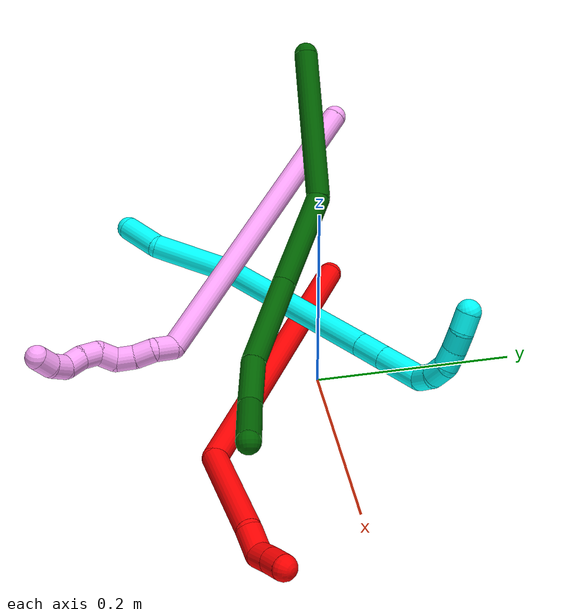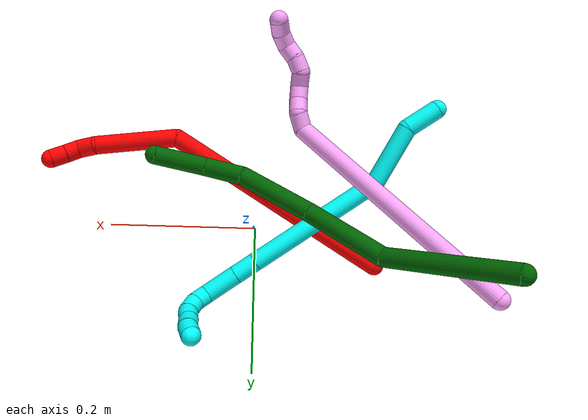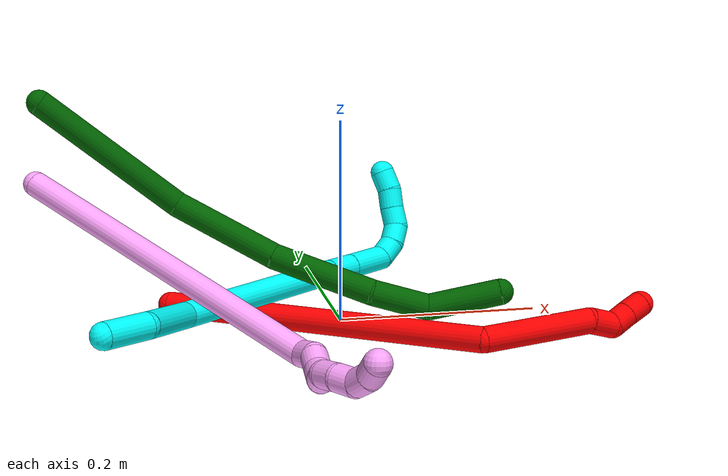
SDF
<sdf version="1.7">
 <world name="default">
  <model name="2">
   <static>0</static>
   <link name="2">
    <collision name="collision-cylinder-e_1_1_4">
     <pose>0.128787 -0.078785 0.057385 0.941279 0.922944 0.495607</pose>
     <geometry><cylinder><radius>0.0125</radius><length>0.323025</length></cylinder></geometry>
     <surface>
      <friction><ode><mu>1.16</mu><mu2>1.16</mu2><slip1>0</slip1><slip2>0</slip2></ode></friction>
      <contact><ode><kp>1e+06</kp><kd>1</kd><max_vel>0</max_vel><min_depth>0.001</min_depth></ode></contact>
     </surface>
    </collision>
    <visual name="visual-cylinder-e_1_1_4">
     <pose>0.128787 -0.078785 0.057385 0.941279 0.922944 0.495607</pose>
     <geometry><cylinder><radius>0.0125</radius><length>0.323025</length></cylinder></geometry>
     <material><ambient>1 0 0 1</ambient></material>
    </visual>
    <collision name="collision-cylinder-e_2_4_5">
     <pose>0.283315 -0.168411 0.162152 0.224916 0.48704 0.056102</pose>
     <geometry><cylinder><radius>0.0125</radius><length>0.110002</length></cylinder></geometry>
     <surface>
      <friction><ode><mu>1.16</mu><mu2>1.16</mu2><slip1>0</slip1><slip2>0</slip2></ode></friction>
      <contact><ode><kp>1e+06</kp><kd>1</kd><max_vel>0</max_vel><min_depth>0.001</min_depth></ode></contact>
     </surface>
    </collision>
    <visual name="visual-cylinder-e_2_4_5">
     <pose>0.283315 -0.168411 0.162152 0.224916 0.48704 0.056102</pose>
     <geometry><cylinder><radius>0.0125</radius><length>0.110002</length></cylinder></geometry>
     <material><ambient>1 0 0 1</ambient></material>
    </visual>
    <collision name="collision-cylinder-e_3_5_6">
     <pose>0.317211 -0.1776 0.219668 -0.161452 0.671165 -0.056418</pose>
     <geometry><cylinder><radius>0.0125</radius><length>0.026225</length></cylinder></geometry>
     <surface>
      <friction><ode><mu>1.16</mu><mu2>1.16</mu2><slip1>0</slip1><slip2>0</slip2></ode></friction>
      <contact><ode><kp>1e+06</kp><kd>1</kd><max_vel>0</max_vel><min_depth>0.001</min_depth></ode></contact>
     </surface>
    </collision>
    <visual name="visual-cylinder-e_3_5_6">
     <pose>0.317211 -0.1776 0.219668 -0.161452 0.671165 -0.056418</pose>
     <geometry><cylinder><radius>0.0125</radius><length>0.026225</length></cylinder></geometry>
     <material><ambient>1 0 0 1</ambient></material>
    </visual>
    <collision name="collision-cylinder-e_4_6_7">
     <pose>0.325793 -0.178284 0.23966 0.232557 0.042102 0.004919</pose>
     <geometry><cylinder><radius>0.0125</radius><length>0.020278</length></cylinder></geometry>
     <surface>
      <friction><ode><mu>1.16</mu><mu2>1.16</mu2><slip1>0</slip1><slip2>0</slip2></ode></friction>
      <contact><ode><kp>1e+06</kp><kd>1</kd><max_vel>0</max_vel><min_depth>0.001</min_depth></ode></contact>
     </surface>
    </collision>
    <visual name="visual-cylinder-e_4_6_7">
     <pose>0.325793 -0.178284 0.23966 0.232557 0.042102 0.004919</pose>
     <geometry><cylinder><radius>0.0125</radius><length>0.020278</length></cylinder></geometry>
     <material><ambient>1 0 0 1</ambient></material>
    </visual>
    <collision name="collision-cylinder-e_5_7_2">
     <pose>0.327087 -0.183003 0.259433 0.235951 0.084861 0.010064</pose>
     <geometry><cylinder><radius>0.0125</radius><length>0.02047</length></cylinder></geometry>
     <surface>
      <friction><ode><mu>1.16</mu><mu2>1.16</mu2><slip1>0</slip1><slip2>0</slip2></ode></friction>
      <contact><ode><kp>1e+06</kp><kd>1</kd><max_vel>0</max_vel><min_depth>0.001</min_depth></ode></contact>
     </surface>
    </collision>
    <visual name="visual-cylinder-e_5_7_2">
     <pose>0.327087 -0.183003 0.259433 0.235951 0.084861 0.010064</pose>
     <geometry><cylinder><radius>0.0125</radius><length>0.02047</length></cylinder></geometry>
     <material><ambient>1 0 0 1</ambient></material>
    </visual>
    <collision name="collision-sphere-2">
     <pose>0.327954 -0.185387 0.269349 0 -0 0</pose>
     <geometry><sphere><radius>0.0125</radius></sphere></geometry>
     <surface>
      <friction><ode><mu>1.16</mu><mu2>1.16</mu2><slip1>0</slip1><slip2>0</slip2></ode></friction>
      <contact><ode><kp>1e+06</kp><kd>1</kd><max_vel>0</max_vel><min_depth>0.001</min_depth></ode></contact>
     </surface>
    </collision>
    <visual name="visual-sphere-2">
     <pose>0.327954 -0.185387 0.269349 0 -0 0</pose>
     <geometry><sphere><radius>0.0125</radius></sphere></geometry>
     <material><ambient>1 0 0 1</ambient></material>
    </visual>
    <collision name="collision-sphere-7">
     <pose>0.326219 -0.180619 0.249518 0 -0 0</pose>
     <geometry><sphere><radius>0.0125</radius></sphere></geometry>
     <surface>
      <friction><ode><mu>1.16</mu><mu2>1.16</mu2><slip1>0</slip1><slip2>0</slip2></ode></friction>
      <contact><ode><kp>1e+06</kp><kd>1</kd><max_vel>0</max_vel><min_depth>0.001</min_depth></ode></contact>
     </surface>
    </collision>
    <visual name="visual-sphere-7">
     <pose>0.326219 -0.180619 0.249518 0 -0 0</pose>
     <geometry><sphere><radius>0.0125</radius></sphere></geometry>
     <material><ambient>1 0 0 1</ambient></material>
    </visual>
    <collision name="collision-sphere-6">
     <pose>0.325366 -0.175949 0.229803 0 -0 0</pose>
     <geometry><sphere><radius>0.0125</radius></sphere></geometry>
     <surface>
      <friction><ode><mu>1.16</mu><mu2>1.16</mu2><slip1>0</slip1><slip2>0</slip2></ode></friction>
      <contact><ode><kp>1e+06</kp><kd>1</kd><max_vel>0</max_vel><min_depth>0.001</min_depth></ode></contact>
     </surface>
    </collision>
    <visual name="visual-sphere-6">
     <pose>0.325366 -0.175949 0.229803 0 -0 0</pose>
     <geometry><sphere><radius>0.0125</radius></sphere></geometry>
     <material><ambient>1 0 0 1</ambient></material>
    </visual>
    <collision name="collision-sphere-5">
     <pose>0.309056 -0.179251 0.209533 0 -0 0</pose>
     <geometry><sphere><radius>0.0125</radius></sphere></geometry>
     <surface>
      <friction><ode><mu>1.16</mu><mu2>1.16</mu2><slip1>0</slip1><slip2>0</slip2></ode></friction>
      <contact><ode><kp>1e+06</kp><kd>1</kd><max_vel>0</max_vel><min_depth>0.001</min_depth></ode></contact>
     </surface>
    </collision>
    <visual name="visual-sphere-5">
     <pose>0.309056 -0.179251 0.209533 0 -0 0</pose>
     <geometry><sphere><radius>0.0125</radius></sphere></geometry>
     <material><ambient>1 0 0 1</ambient></material>
    </visual>
    <collision name="collision-sphere-1">
     <geometry><sphere><radius>0.0125</radius></sphere></geometry>
     <surface>
      <friction><ode><mu>1.16</mu><mu2>1.16</mu2><slip1>0</slip1><slip2>0</slip2></ode></friction>
      <contact><ode><kp>1e+06</kp><kd>1</kd><max_vel>0</max_vel><min_depth>0.001</min_depth></ode></contact>
     </surface>
    </collision>
    <visual name="visual-sphere-1">
     <geometry><sphere><radius>0.0125</radius></sphere></geometry>
     <material><ambient>1 0 0 1</ambient></material>
    </visual>
    <collision name="collision-sphere-4">
     <pose>0.257574 -0.15757 0.11477 0 -0 0</pose>
     <geometry><sphere><radius>0.0125</radius></sphere></geometry>
     <surface>
      <friction><ode><mu>1.16</mu><mu2>1.16</mu2><slip1>0</slip1><slip2>0</slip2></ode></friction>
      <contact><ode><kp>1e+06</kp><kd>1</kd><max_vel>0</max_vel><min_depth>0.001</min_depth></ode></contact>
     </surface>
    </collision>
    <visual name="visual-sphere-4">
     <pose>0.257574 -0.15757 0.11477 0 -0 0</pose>
     <geometry><sphere><radius>0.0125</radius></sphere></geometry>
     <material><ambient>1 0 0 1</ambient></material>
    </visual>
    <inertial>
     <pose>0.188775 -0.111988 0.10461 0 -0 0</pose>
     <mass>0.5</mass>
     <inertia>
      <ixx>0.002445</ixx>
      <ixy>0</ixy>
      <ixz>0</ixz>
      <iyy>0.003245</iyy>
      <iyz>0</iyz>
      <izz>-0.000885</izz>
     </inertia>
    </inertial>
   </link>
   <pose>-0.164053 0.047022 0.011489 -1.30174 0.616195 -0.76606</pose>
  </model>
  <model name="3">
   <static>0</static>
   <link name="3">
    <collision name="collision-cylinder-e_1_1_4">
     <pose>0.019445 0.005965 -0.011153 -2.65043 0.994121 -2.276</pose>
     <geometry><cylinder><radius>0.0125</radius><length>0.046393</length></cylinder></geometry>
     <surface>
      <friction><ode><mu>1.16</mu><mu2>1.16</mu2><slip1>0</slip1><slip2>0</slip2></ode></friction>
      <contact><ode><kp>1e+06</kp><kd>1</kd><max_vel>0</max_vel><min_depth>0.001</min_depth></ode></contact>
     </surface>
    </collision>
    <visual name="visual-cylinder-e_1_1_4">
     <pose>0.019445 0.005965 -0.011153 -2.65043 0.994121 -2.276</pose>
     <geometry><cylinder><radius>0.0125</radius><length>0.046393</length></cylinder></geometry>
     <material><ambient>0.003922 1 0.996078 1</ambient></material>
    </visual>
    <collision name="collision-cylinder-e_2_4_5">
     <pose>0.061232 0.039253 -0.045085 -2.26576 0.560793 -1.10281</pose>
     <geometry><cylinder><radius>0.0125</radius><length>0.084014</length></cylinder></geometry>
     <surface>
      <friction><ode><mu>1.16</mu><mu2>1.16</mu2><slip1>0</slip1><slip2>0</slip2></ode></friction>
      <contact><ode><kp>1e+06</kp><kd>1</kd><max_vel>0</max_vel><min_depth>0.001</min_depth></ode></contact>
     </surface>
    </collision>
    <visual name="visual-cylinder-e_2_4_5">
     <pose>0.061232 0.039253 -0.045085 -2.26576 0.560793 -1.10281</pose>
     <geometry><cylinder><radius>0.0125</radius><length>0.084014</length></cylinder></geometry>
     <material><ambient>0.003922 1 0.996078 1</ambient></material>
    </visual>
    <collision name="collision-cylinder-e_3_5_6">
     <pose>0.165472 0.092641 -0.1101 -2.58869 1.02597 -2.20841</pose>
     <geometry><cylinder><radius>0.0125</radius><length>0.191527</length></cylinder></geometry>
     <surface>
      <friction><ode><mu>1.16</mu><mu2>1.16</mu2><slip1>0</slip1><slip2>0</slip2></ode></friction>
      <contact><ode><kp>1e+06</kp><kd>1</kd><max_vel>0</max_vel><min_depth>0.001</min_depth></ode></contact>
     </surface>
    </collision>
    <visual name="visual-cylinder-e_3_5_6">
     <pose>0.165472 0.092641 -0.1101 -2.58869 1.02597 -2.20841</pose>
     <geometry><cylinder><radius>0.0125</radius><length>0.191527</length></cylinder></geometry>
     <material><ambient>0.003922 1 0.996078 1</ambient></material>
    </visual>
    <collision name="collision-cylinder-e_4_6_7">
     <pose>0.260386 0.122881 -0.159241 -2.59763 1.01582 -2.21262</pose>
     <geometry><cylinder><radius>0.0125</radius><length>0.030628</length></cylinder></geometry>
     <surface>
      <friction><ode><mu>1.16</mu><mu2>1.16</mu2><slip1>0</slip1><slip2>0</slip2></ode></friction>
      <contact><ode><kp>1e+06</kp><kd>1</kd><max_vel>0</max_vel><min_depth>0.001</min_depth></ode></contact>
     </surface>
    </collision>
    <visual name="visual-cylinder-e_4_6_7">
     <pose>0.260386 0.122881 -0.159241 -2.59763 1.01582 -2.21262</pose>
     <geometry><cylinder><radius>0.0125</radius><length>0.030628</length></cylinder></geometry>
     <material><ambient>0.003922 1 0.996078 1</ambient></material>
    </visual>
    <collision name="collision-cylinder-e_5_7_8">
     <pose>0.293364 0.133565 -0.176662 -2.58747 1.01617 -2.19727</pose>
     <geometry><cylinder><radius>0.0125</radius><length>0.046964</length></cylinder></geometry>
     <surface>
      <friction><ode><mu>1.16</mu><mu2>1.16</mu2><slip1>0</slip1><slip2>0</slip2></ode></friction>
      <contact><ode><kp>1e+06</kp><kd>1</kd><max_vel>0</max_vel><min_depth>0.001</min_depth></ode></contact>
     </surface>
    </collision>
    <visual name="visual-cylinder-e_5_7_8">
     <pose>0.293364 0.133565 -0.176662 -2.58747 1.01617 -2.19727</pose>
     <geometry><cylinder><radius>0.0125</radius><length>0.046964</length></cylinder></geometry>
     <material><ambient>0.003922 1 0.996078 1</ambient></material>
    </visual>
    <collision name="collision-cylinder-e_6_8_9">
     <pose>0.322975 0.142814 -0.185402 -0.996265 1.24429 -0.743788</pose>
     <geometry><cylinder><radius>0.0125</radius><length>0.020375</length></cylinder></geometry>
     <surface>
      <friction><ode><mu>1.16</mu><mu2>1.16</mu2><slip1>0</slip1><slip2>0</slip2></ode></friction>
      <contact><ode><kp>1e+06</kp><kd>1</kd><max_vel>0</max_vel><min_depth>0.001</min_depth></ode></contact>
     </surface>
    </collision>
    <visual name="visual-cylinder-e_6_8_9">
     <pose>0.322975 0.142814 -0.185402 -0.996265 1.24429 -0.743788</pose>
     <geometry><cylinder><radius>0.0125</radius><length>0.020375</length></cylinder></geometry>
     <material><ambient>0.003922 1 0.996078 1</ambient></material>
    </visual>
    <collision name="collision-cylinder-e_7_9_10">
     <pose>0.340376 0.150027 -0.179127 -0.782179 0.885112 -0.385948</pose>
     <geometry><cylinder><radius>0.0125</radius><length>0.020031</length></cylinder></geometry>
     <surface>
      <friction><ode><mu>1.16</mu><mu2>1.16</mu2><slip1>0</slip1><slip2>0</slip2></ode></friction>
      <contact><ode><kp>1e+06</kp><kd>1</kd><max_vel>0</max_vel><min_depth>0.001</min_depth></ode></contact>
     </surface>
    </collision>
    <visual name="visual-cylinder-e_7_9_10">
     <pose>0.340376 0.150027 -0.179127 -0.782179 0.885112 -0.385948</pose>
     <geometry><cylinder><radius>0.0125</radius><length>0.020031</length></cylinder></geometry>
     <material><ambient>0.003922 1 0.996078 1</ambient></material>
    </visual>
    <collision name="collision-cylinder-e_8_10_11">
     <pose>0.352018 0.159713 -0.167015 -0.600634 0.398899 -0.125034</pose>
     <geometry><cylinder><radius>0.0125</radius><length>0.020031</length></cylinder></geometry>
     <surface>
      <friction><ode><mu>1.16</mu><mu2>1.16</mu2><slip1>0</slip1><slip2>0</slip2></ode></friction>
      <contact><ode><kp>1e+06</kp><kd>1</kd><max_vel>0</max_vel><min_depth>0.001</min_depth></ode></contact>
     </surface>
    </collision>
    <visual name="visual-cylinder-e_8_10_11">
     <pose>0.352018 0.159713 -0.167015 -0.600634 0.398899 -0.125034</pose>
     <geometry><cylinder><radius>0.0125</radius><length>0.020031</length></cylinder></geometry>
     <material><ambient>0.003922 1 0.996078 1</ambient></material>
    </visual>
    <collision name="collision-cylinder-e_9_11_12">
     <pose>0.360357 0.168968 -0.15139 -0.466961 0.460374 -0.111345</pose>
     <geometry><cylinder><radius>0.0125</radius><length>0.020028</length></cylinder></geometry>
     <surface>
      <friction><ode><mu>1.16</mu><mu2>1.16</mu2><slip1>0</slip1><slip2>0</slip2></ode></friction>
      <contact><ode><kp>1e+06</kp><kd>1</kd><max_vel>0</max_vel><min_depth>0.001</min_depth></ode></contact>
     </surface>
    </collision>
    <visual name="visual-cylinder-e_9_11_12">
     <pose>0.360357 0.168968 -0.15139 -0.466961 0.460374 -0.111345</pose>
     <geometry><cylinder><radius>0.0125</radius><length>0.020028</length></cylinder></geometry>
     <material><ambient>0.003922 1 0.996078 1</ambient></material>
    </visual>
    <collision name="collision-cylinder-e_10_12_2">
     <pose>0.367048 0.178397 -0.135254 -0.585779 0.226034 -0.068428</pose>
     <geometry><cylinder><radius>0.0125</radius><length>0.020009</length></cylinder></geometry>
     <surface>
      <friction><ode><mu>1.16</mu><mu2>1.16</mu2><slip1>0</slip1><slip2>0</slip2></ode></friction>
      <contact><ode><kp>1e+06</kp><kd>1</kd><max_vel>0</max_vel><min_depth>0.001</min_depth></ode></contact>
     </surface>
    </collision>
    <visual name="visual-cylinder-e_10_12_2">
     <pose>0.367048 0.178397 -0.135254 -0.585779 0.226034 -0.068428</pose>
     <geometry><cylinder><radius>0.0125</radius><length>0.020009</length></cylinder></geometry>
     <material><ambient>0.003922 1 0.996078 1</ambient></material>
    </visual>
    <collision name="collision-sphere-2">
     <pose>0.36929 0.183787 -0.12713 0 -0 0</pose>
     <geometry><sphere><radius>0.0125</radius></sphere></geometry>
     <surface>
      <friction><ode><mu>1.16</mu><mu2>1.16</mu2><slip1>0</slip1><slip2>0</slip2></ode></friction>
      <contact><ode><kp>1e+06</kp><kd>1</kd><max_vel>0</max_vel><min_depth>0.001</min_depth></ode></contact>
     </surface>
    </collision>
    <visual name="visual-sphere-2">
     <pose>0.36929 0.183787 -0.12713 0 -0 0</pose>
     <geometry><sphere><radius>0.0125</radius></sphere></geometry>
     <material><ambient>0.003922 1 0.996078 1</ambient></material>
    </visual>
    <collision name="collision-sphere-12">
     <pose>0.364806 0.173007 -0.143379 0 -0 0</pose>
     <geometry><sphere><radius>0.0125</radius></sphere></geometry>
     <surface>
      <friction><ode><mu>1.16</mu><mu2>1.16</mu2><slip1>0</slip1><slip2>0</slip2></ode></friction>
      <contact><ode><kp>1e+06</kp><kd>1</kd><max_vel>0</max_vel><min_depth>0.001</min_depth></ode></contact>
     </surface>
    </collision>
    <visual name="visual-sphere-12">
     <pose>0.364806 0.173007 -0.143379 0 -0 0</pose>
     <geometry><sphere><radius>0.0125</radius></sphere></geometry>
     <material><ambient>0.003922 1 0.996078 1</ambient></material>
    </visual>
    <collision name="collision-sphere-11">
     <pose>0.355908 0.164929 -0.159401 0 -0 0</pose>
     <geometry><sphere><radius>0.0125</radius></sphere></geometry>
     <surface>
      <friction><ode><mu>1.16</mu><mu2>1.16</mu2><slip1>0</slip1><slip2>0</slip2></ode></friction>
      <contact><ode><kp>1e+06</kp><kd>1</kd><max_vel>0</max_vel><min_depth>0.001</min_depth></ode></contact>
     </surface>
    </collision>
    <visual name="visual-sphere-11">
     <pose>0.355908 0.164929 -0.159401 0 -0 0</pose>
     <geometry><sphere><radius>0.0125</radius></sphere></geometry>
     <material><ambient>0.003922 1 0.996078 1</ambient></material>
    </visual>
    <collision name="collision-sphere-10">
     <pose>0.348127 0.154497 -0.174629 0 -0 0</pose>
     <geometry><sphere><radius>0.0125</radius></sphere></geometry>
     <surface>
      <friction><ode><mu>1.16</mu><mu2>1.16</mu2><slip1>0</slip1><slip2>0</slip2></ode></friction>
      <contact><ode><kp>1e+06</kp><kd>1</kd><max_vel>0</max_vel><min_depth>0.001</min_depth></ode></contact>
     </surface>
    </collision>
    <visual name="visual-sphere-10">
     <pose>0.348127 0.154497 -0.174629 0 -0 0</pose>
     <geometry><sphere><radius>0.0125</radius></sphere></geometry>
     <material><ambient>0.003922 1 0.996078 1</ambient></material>
    </visual>
    <collision name="collision-sphere-9">
     <pose>0.332624 0.145557 -0.183626 0 -0 0</pose>
     <geometry><sphere><radius>0.0125</radius></sphere></geometry>
     <surface>
      <friction><ode><mu>1.16</mu><mu2>1.16</mu2><slip1>0</slip1><slip2>0</slip2></ode></friction>
      <contact><ode><kp>1e+06</kp><kd>1</kd><max_vel>0</max_vel><min_depth>0.001</min_depth></ode></contact>
     </surface>
    </collision>
    <visual name="visual-sphere-9">
     <pose>0.332624 0.145557 -0.183626 0 -0 0</pose>
     <geometry><sphere><radius>0.0125</radius></sphere></geometry>
     <material><ambient>0.003922 1 0.996078 1</ambient></material>
    </visual>
    <collision name="collision-sphere-4">
     <pose>0.03889 0.01193 -0.022305 0 -0 0</pose>
     <geometry><sphere><radius>0.0125</radius></sphere></geometry>
     <surface>
      <friction><ode><mu>1.16</mu><mu2>1.16</mu2><slip1>0</slip1><slip2>0</slip2></ode></friction>
      <contact><ode><kp>1e+06</kp><kd>1</kd><max_vel>0</max_vel><min_depth>0.001</min_depth></ode></contact>
     </surface>
    </collision>
    <visual name="visual-sphere-4">
     <pose>0.03889 0.01193 -0.022305 0 -0 0</pose>
     <geometry><sphere><radius>0.0125</radius></sphere></geometry>
     <material><ambient>0.003922 1 0.996078 1</ambient></material>
    </visual>
    <collision name="collision-sphere-1">
     <geometry><sphere><radius>0.0125</radius></sphere></geometry>
     <surface>
      <friction><ode><mu>1.16</mu><mu2>1.16</mu2><slip1>0</slip1><slip2>0</slip2></ode></friction>
      <contact><ode><kp>1e+06</kp><kd>1</kd><max_vel>0</max_vel><min_depth>0.001</min_depth></ode></contact>
     </surface>
    </collision>
    <visual name="visual-sphere-1">
     <geometry><sphere><radius>0.0125</radius></sphere></geometry>
     <material><ambient>0.003922 1 0.996078 1</ambient></material>
    </visual>
    <collision name="collision-sphere-8">
     <pose>0.313326 0.140072 -0.187178 0 -0 0</pose>
     <geometry><sphere><radius>0.0125</radius></sphere></geometry>
     <surface>
      <friction><ode><mu>1.16</mu><mu2>1.16</mu2><slip1>0</slip1><slip2>0</slip2></ode></friction>
      <contact><ode><kp>1e+06</kp><kd>1</kd><max_vel>0</max_vel><min_depth>0.001</min_depth></ode></contact>
     </surface>
    </collision>
    <visual name="visual-sphere-8">
     <pose>0.313326 0.140072 -0.187178 0 -0 0</pose>
     <geometry><sphere><radius>0.0125</radius></sphere></geometry>
     <material><ambient>0.003922 1 0.996078 1</ambient></material>
    </visual>
    <collision name="collision-sphere-5">
     <pose>0.083574 0.066576 -0.067864 0 -0 0</pose>
     <geometry><sphere><radius>0.0125</radius></sphere></geometry>
     <surface>
      <friction><ode><mu>1.16</mu><mu2>1.16</mu2><slip1>0</slip1><slip2>0</slip2></ode></friction>
      <contact><ode><kp>1e+06</kp><kd>1</kd><max_vel>0</max_vel><min_depth>0.001</min_depth></ode></contact>
     </surface>
    </collision>
    <visual name="visual-sphere-5">
     <pose>0.083574 0.066576 -0.067864 0 -0 0</pose>
     <geometry><sphere><radius>0.0125</radius></sphere></geometry>
     <material><ambient>0.003922 1 0.996078 1</ambient></material>
    </visual>
    <collision name="collision-sphere-6">
     <pose>0.247371 0.118705 -0.152337 0 -0 0</pose>
     <geometry><sphere><radius>0.0125</radius></sphere></geometry>
     <surface>
      <friction><ode><mu>1.16</mu><mu2>1.16</mu2><slip1>0</slip1><slip2>0</slip2></ode></friction>
      <contact><ode><kp>1e+06</kp><kd>1</kd><max_vel>0</max_vel><min_depth>0.001</min_depth></ode></contact>
     </surface>
    </collision>
    <visual name="visual-sphere-6">
     <pose>0.247371 0.118705 -0.152337 0 -0 0</pose>
     <geometry><sphere><radius>0.0125</radius></sphere></geometry>
     <material><ambient>0.003922 1 0.996078 1</ambient></material>
    </visual>
    <collision name="collision-sphere-7">
     <pose>0.273402 0.127057 -0.166146 0 -0 0</pose>
     <geometry><sphere><radius>0.0125</radius></sphere></geometry>
     <surface>
      <friction><ode><mu>1.16</mu><mu2>1.16</mu2><slip1>0</slip1><slip2>0</slip2></ode></friction>
      <contact><ode><kp>1e+06</kp><kd>1</kd><max_vel>0</max_vel><min_depth>0.001</min_depth></ode></contact>
     </surface>
    </collision>
    <visual name="visual-sphere-7">
     <pose>0.273402 0.127057 -0.166146 0 -0 0</pose>
     <geometry><sphere><radius>0.0125</radius></sphere></geometry>
     <material><ambient>0.003922 1 0.996078 1</ambient></material>
    </visual>
    <inertial>
     <pose>0.189006 0.094844 -0.110032 0 -0 0</pose>
     <mass>0.5</mass>
     <inertia>
      <ixx>-0.000435</ixx>
      <ixy>0</ixy>
      <ixz>0</ixz>
      <iyy>0.000262</iyy>
      <iyz>0</iyz>
      <izz>-0.000775</izz>
     </inertia>
    </inertial>
   </link>
   <pose>-0.236222 -0.163029 0.05016 0.105089 -0.465921 0.283203</pose>
  </model>
  <model name="4">
   <static>0</static>
   <link name="4">
    <collision name="collision-cylinder-e_1_1_4">
     <pose>0.117906 -0.100562 -0.064961 2.14434 0.777769 1.2902</pose>
     <geometry><cylinder><radius>0.0125</radius><length>0.336062</length></cylinder></geometry>
     <surface>
      <friction><ode><mu>1.16</mu><mu2>1.16</mu2><slip1>0</slip1><slip2>0</slip2></ode></friction>
      <contact><ode><kp>1e+06</kp><kd>1</kd><max_vel>0</max_vel><min_depth>0.001</min_depth></ode></contact>
     </surface>
    </collision>
    <visual name="visual-cylinder-e_1_1_4">
     <pose>0.117906 -0.100562 -0.064961 2.14434 0.777769 1.2902</pose>
     <geometry><cylinder><radius>0.0125</radius><length>0.336062</length></cylinder></geometry>
     <material><ambient>1 0.65098 0.996078 1</ambient></material>
    </visual>
    <collision name="collision-cylinder-e_2_4_5">
     <pose>0.239296 -0.211948 -0.128556 1.44534 0.309128 0.273071</pose>
     <geometry><cylinder><radius>0.0125</radius><length>0.022907</length></cylinder></geometry>
     <surface>
      <friction><ode><mu>1.16</mu><mu2>1.16</mu2><slip1>0</slip1><slip2>0</slip2></ode></friction>
      <contact><ode><kp>1e+06</kp><kd>1</kd><max_vel>0</max_vel><min_depth>0.001</min_depth></ode></contact>
     </surface>
    </collision>
    <visual name="visual-cylinder-e_2_4_5">
     <pose>0.239296 -0.211948 -0.128556 1.44534 0.309128 0.273071</pose>
     <geometry><cylinder><radius>0.0125</radius><length>0.022907</length></cylinder></geometry>
     <material><ambient>1 0.65098 0.996078 1</ambient></material>
    </visual>
    <collision name="collision-cylinder-e_3_5_6">
     <pose>0.243009 -0.232101 -0.131201 1.9768 0.022512 0.03418</pose>
     <geometry><cylinder><radius>0.0125</radius><length>0.02031</length></cylinder></geometry>
     <surface>
      <friction><ode><mu>1.16</mu><mu2>1.16</mu2><slip1>0</slip1><slip2>0</slip2></ode></friction>
      <contact><ode><kp>1e+06</kp><kd>1</kd><max_vel>0</max_vel><min_depth>0.001</min_depth></ode></contact>
     </surface>
    </collision>
    <visual name="visual-cylinder-e_3_5_6">
     <pose>0.243009 -0.232101 -0.131201 1.9768 0.022512 0.03418</pose>
     <geometry><cylinder><radius>0.0125</radius><length>0.02031</length></cylinder></geometry>
     <material><ambient>1 0.65098 0.996078 1</ambient></material>
    </visual>
    <collision name="collision-cylinder-e_4_6_7">
     <pose>0.242845 -0.251253 -0.137092 1.76008 -0.039253 -0.047484</pose>
     <geometry><cylinder><radius>0.0125</radius><length>0.020023</length></cylinder></geometry>
     <surface>
      <friction><ode><mu>1.16</mu><mu2>1.16</mu2><slip1>0</slip1><slip2>0</slip2></ode></friction>
      <contact><ode><kp>1e+06</kp><kd>1</kd><max_vel>0</max_vel><min_depth>0.001</min_depth></ode></contact>
     </surface>
    </collision>
    <visual name="visual-cylinder-e_4_6_7">
     <pose>0.242845 -0.251253 -0.137092 1.76008 -0.039253 -0.047484</pose>
     <geometry><cylinder><radius>0.0125</radius><length>0.020023</length></cylinder></geometry>
     <material><ambient>1 0.65098 0.996078 1</ambient></material>
    </visual>
    <collision name="collision-cylinder-e_5_7_8">
     <pose>0.24176 -0.270291 -0.134477 1.11671 -0.067423 -0.042126</pose>
     <geometry><cylinder><radius>0.0125</radius><length>0.020552</length></cylinder></geometry>
     <surface>
      <friction><ode><mu>1.16</mu><mu2>1.16</mu2><slip1>0</slip1><slip2>0</slip2></ode></friction>
      <contact><ode><kp>1e+06</kp><kd>1</kd><max_vel>0</max_vel><min_depth>0.001</min_depth></ode></contact>
     </surface>
    </collision>
    <visual name="visual-cylinder-e_5_7_8">
     <pose>0.24176 -0.270291 -0.134477 1.11671 -0.067423 -0.042126</pose>
     <geometry><cylinder><radius>0.0125</radius><length>0.020552</length></cylinder></geometry>
     <material><ambient>1 0.65098 0.996078 1</ambient></material>
    </visual>
    <collision name="collision-cylinder-e_6_8_9">
     <pose>0.245241 -0.288588 -0.129294 1.49542 0.429608 0.399242</pose>
     <geometry><cylinder><radius>0.0125</radius><length>0.020038</length></cylinder></geometry>
     <surface>
      <friction><ode><mu>1.16</mu><mu2>1.16</mu2><slip1>0</slip1><slip2>0</slip2></ode></friction>
      <contact><ode><kp>1e+06</kp><kd>1</kd><max_vel>0</max_vel><min_depth>0.001</min_depth></ode></contact>
     </surface>
    </collision>
    <visual name="visual-cylinder-e_6_8_9">
     <pose>0.245241 -0.288588 -0.129294 1.49542 0.429608 0.399242</pose>
     <geometry><cylinder><radius>0.0125</radius><length>0.020038</length></cylinder></geometry>
     <material><ambient>1 0.65098 0.996078 1</ambient></material>
    </visual>
    <collision name="collision-cylinder-e_7_9_10">
     <pose>0.255618 -0.305531 -0.129335 1.66299 0.666149 0.725288</pose>
     <geometry><cylinder><radius>0.0125</radius><length>0.020081</length></cylinder></geometry>
     <surface>
      <friction><ode><mu>1.16</mu><mu2>1.16</mu2><slip1>0</slip1><slip2>0</slip2></ode></friction>
      <contact><ode><kp>1e+06</kp><kd>1</kd><max_vel>0</max_vel><min_depth>0.001</min_depth></ode></contact>
     </surface>
    </collision>
    <visual name="visual-cylinder-e_7_9_10">
     <pose>0.255618 -0.305531 -0.129335 1.66299 0.666149 0.725288</pose>
     <geometry><cylinder><radius>0.0125</radius><length>0.020081</length></cylinder></geometry>
     <material><ambient>1 0.65098 0.996078 1</ambient></material>
    </visual>
    <collision name="collision-cylinder-e_8_10_11">
     <pose>0.265973 -0.321171 -0.12532 1.02337 0.427379 0.24253</pose>
     <geometry><cylinder><radius>0.0125</radius><length>0.020023</length></cylinder></geometry>
     <surface>
      <friction><ode><mu>1.16</mu><mu2>1.16</mu2><slip1>0</slip1><slip2>0</slip2></ode></friction>
      <contact><ode><kp>1e+06</kp><kd>1</kd><max_vel>0</max_vel><min_depth>0.001</min_depth></ode></contact>
     </surface>
    </collision>
    <visual name="visual-cylinder-e_8_10_11">
     <pose>0.265973 -0.321171 -0.12532 1.02337 0.427379 0.24253</pose>
     <geometry><cylinder><radius>0.0125</radius><length>0.020023</length></cylinder></geometry>
     <material><ambient>1 0.65098 0.996078 1</ambient></material>
    </visual>
    <collision name="collision-cylinder-e_9_11_2">
     <pose>0.271618 -0.336034 -0.113676 0.798485 0.150066 0.063411</pose>
     <geometry><cylinder><radius>0.0125</radius><length>0.020004</length></cylinder></geometry>
     <surface>
      <friction><ode><mu>1.16</mu><mu2>1.16</mu2><slip1>0</slip1><slip2>0</slip2></ode></friction>
      <contact><ode><kp>1e+06</kp><kd>1</kd><max_vel>0</max_vel><min_depth>0.001</min_depth></ode></contact>
     </surface>
    </collision>
    <visual name="visual-cylinder-e_9_11_2">
     <pose>0.271618 -0.336034 -0.113676 0.798485 0.150066 0.063411</pose>
     <geometry><cylinder><radius>0.0125</radius><length>0.020004</length></cylinder></geometry>
     <material><ambient>1 0.65098 0.996078 1</ambient></material>
    </visual>
    <collision name="collision-sphere-2">
     <pose>0.273113 -0.343118 -0.106776 0 -0 0</pose>
     <geometry><sphere><radius>0.0125</radius></sphere></geometry>
     <surface>
      <friction><ode><mu>1.16</mu><mu2>1.16</mu2><slip1>0</slip1><slip2>0</slip2></ode></friction>
      <contact><ode><kp>1e+06</kp><kd>1</kd><max_vel>0</max_vel><min_depth>0.001</min_depth></ode></contact>
     </surface>
    </collision>
    <visual name="visual-sphere-2">
     <pose>0.273113 -0.343118 -0.106776 0 -0 0</pose>
     <geometry><sphere><radius>0.0125</radius></sphere></geometry>
     <material><ambient>1 0.65098 0.996078 1</ambient></material>
    </visual>
    <collision name="collision-sphere-11">
     <pose>0.270122 -0.328951 -0.120577 0 -0 0</pose>
     <geometry><sphere><radius>0.0125</radius></sphere></geometry>
     <surface>
      <friction><ode><mu>1.16</mu><mu2>1.16</mu2><slip1>0</slip1><slip2>0</slip2></ode></friction>
      <contact><ode><kp>1e+06</kp><kd>1</kd><max_vel>0</max_vel><min_depth>0.001</min_depth></ode></contact>
     </surface>
    </collision>
    <visual name="visual-sphere-11">
     <pose>0.270122 -0.328951 -0.120577 0 -0 0</pose>
     <geometry><sphere><radius>0.0125</radius></sphere></geometry>
     <material><ambient>1 0.65098 0.996078 1</ambient></material>
    </visual>
    <collision name="collision-sphere-10">
     <pose>0.261823 -0.313391 -0.130062 0 -0 0</pose>
     <geometry><sphere><radius>0.0125</radius></sphere></geometry>
     <surface>
      <friction><ode><mu>1.16</mu><mu2>1.16</mu2><slip1>0</slip1><slip2>0</slip2></ode></friction>
      <contact><ode><kp>1e+06</kp><kd>1</kd><max_vel>0</max_vel><min_depth>0.001</min_depth></ode></contact>
     </surface>
    </collision>
    <visual name="visual-sphere-10">
     <pose>0.261823 -0.313391 -0.130062 0 -0 0</pose>
     <geometry><sphere><radius>0.0125</radius></sphere></geometry>
     <material><ambient>1 0.65098 0.996078 1</ambient></material>
    </visual>
    <collision name="collision-sphere-9">
     <pose>0.249414 -0.29767 -0.128608 0 -0 0</pose>
     <geometry><sphere><radius>0.0125</radius></sphere></geometry>
     <surface>
      <friction><ode><mu>1.16</mu><mu2>1.16</mu2><slip1>0</slip1><slip2>0</slip2></ode></friction>
      <contact><ode><kp>1e+06</kp><kd>1</kd><max_vel>0</max_vel><min_depth>0.001</min_depth></ode></contact>
     </surface>
    </collision>
    <visual name="visual-sphere-9">
     <pose>0.249414 -0.29767 -0.128608 0 -0 0</pose>
     <geometry><sphere><radius>0.0125</radius></sphere></geometry>
     <material><ambient>1 0.65098 0.996078 1</ambient></material>
    </visual>
    <collision name="collision-sphere-4">
     <pose>0.235812 -0.201123 -0.129922 0 -0 0</pose>
     <geometry><sphere><radius>0.0125</radius></sphere></geometry>
     <surface>
      <friction><ode><mu>1.16</mu><mu2>1.16</mu2><slip1>0</slip1><slip2>0</slip2></ode></friction>
      <contact><ode><kp>1e+06</kp><kd>1</kd><max_vel>0</max_vel><min_depth>0.001</min_depth></ode></contact>
     </surface>
    </collision>
    <visual name="visual-sphere-4">
     <pose>0.235812 -0.201123 -0.129922 0 -0 0</pose>
     <geometry><sphere><radius>0.0125</radius></sphere></geometry>
     <material><ambient>1 0.65098 0.996078 1</ambient></material>
    </visual>
    <collision name="collision-sphere-1">
     <geometry><sphere><radius>0.0125</radius></sphere></geometry>
     <surface>
      <friction><ode><mu>1.16</mu><mu2>1.16</mu2><slip1>0</slip1><slip2>0</slip2></ode></friction>
      <contact><ode><kp>1e+06</kp><kd>1</kd><max_vel>0</max_vel><min_depth>0.001</min_depth></ode></contact>
     </surface>
    </collision>
    <visual name="visual-sphere-1">
     <geometry><sphere><radius>0.0125</radius></sphere></geometry>
     <material><ambient>1 0.65098 0.996078 1</ambient></material>
    </visual>
    <collision name="collision-sphere-8">
     <pose>0.241068 -0.279505 -0.12998 0 -0 0</pose>
     <geometry><sphere><radius>0.0125</radius></sphere></geometry>
     <surface>
      <friction><ode><mu>1.16</mu><mu2>1.16</mu2><slip1>0</slip1><slip2>0</slip2></ode></friction>
      <contact><ode><kp>1e+06</kp><kd>1</kd><max_vel>0</max_vel><min_depth>0.001</min_depth></ode></contact>
     </surface>
    </collision>
    <visual name="visual-sphere-8">
     <pose>0.241068 -0.279505 -0.12998 0 -0 0</pose>
     <geometry><sphere><radius>0.0125</radius></sphere></geometry>
     <material><ambient>1 0.65098 0.996078 1</ambient></material>
    </visual>
    <collision name="collision-sphere-5">
     <pose>0.242781 -0.222774 -0.127191 0 -0 0</pose>
     <geometry><sphere><radius>0.0125</radius></sphere></geometry>
     <surface>
      <friction><ode><mu>1.16</mu><mu2>1.16</mu2><slip1>0</slip1><slip2>0</slip2></ode></friction>
      <contact><ode><kp>1e+06</kp><kd>1</kd><max_vel>0</max_vel><min_depth>0.001</min_depth></ode></contact>
     </surface>
    </collision>
    <visual name="visual-sphere-5">
     <pose>0.242781 -0.222774 -0.127191 0 -0 0</pose>
     <geometry><sphere><radius>0.0125</radius></sphere></geometry>
     <material><ambient>1 0.65098 0.996078 1</ambient></material>
    </visual>
    <collision name="collision-sphere-6">
     <pose>0.243238 -0.241428 -0.13521 0 -0 0</pose>
     <geometry><sphere><radius>0.0125</radius></sphere></geometry>
     <surface>
      <friction><ode><mu>1.16</mu><mu2>1.16</mu2><slip1>0</slip1><slip2>0</slip2></ode></friction>
      <contact><ode><kp>1e+06</kp><kd>1</kd><max_vel>0</max_vel><min_depth>0.001</min_depth></ode></contact>
     </surface>
    </collision>
    <visual name="visual-sphere-6">
     <pose>0.243238 -0.241428 -0.13521 0 -0 0</pose>
     <geometry><sphere><radius>0.0125</radius></sphere></geometry>
     <material><ambient>1 0.65098 0.996078 1</ambient></material>
    </visual>
    <collision name="collision-sphere-7">
     <pose>0.242452 -0.261078 -0.138975 0 -0 0</pose>
     <geometry><sphere><radius>0.0125</radius></sphere></geometry>
     <surface>
      <friction><ode><mu>1.16</mu><mu2>1.16</mu2><slip1>0</slip1><slip2>0</slip2></ode></friction>
      <contact><ode><kp>1e+06</kp><kd>1</kd><max_vel>0</max_vel><min_depth>0.001</min_depth></ode></contact>
     </surface>
    </collision>
    <visual name="visual-sphere-7">
     <pose>0.242452 -0.261078 -0.138975 0 -0 0</pose>
     <geometry><sphere><radius>0.0125</radius></sphere></geometry>
     <material><ambient>1 0.65098 0.996078 1</ambient></material>
    </visual>
    <inertial>
     <pose>0.161356 -0.158042 -0.085841 0 -0 0</pose>
     <mass>0.5</mass>
     <inertia>
      <ixx>0.002835</ixx>
      <ixy>0</ixy>
      <ixz>0</ixz>
      <iyy>0.003474</iyy>
      <iyz>0</iyz>
      <izz>-0.000328</izz>
     </inertia>
    </inertial>
   </link>
   <pose>-0.290811 0.077525 0.133566 -0.102317 0.04295 -0.010359</pose>
  </model>
  <model name="6">
   <static>0</static>
   <link name="6">
    <collision name="collision-cylinder-e_1_1_4">
     <pose>-0.000217 0.002002 -0.081805 -3.11713 -0.002654 0.216134</pose>
     <geometry><cylinder><radius>0.0125</radius><length>0.16366</length></cylinder></geometry>
     <surface>
      <friction><ode><mu>1.16</mu><mu2>1.16</mu2><slip1>0</slip1><slip2>0</slip2></ode></friction>
      <contact><ode><kp>1e+06</kp><kd>1</kd><max_vel>0</max_vel><min_depth>0.001</min_depth></ode></contact>
     </surface>
    </collision>
    <visual name="visual-cylinder-e_1_1_4">
     <pose>-0.000217 0.002002 -0.081805 -3.11713 -0.002654 0.216134</pose>
     <geometry><cylinder><radius>0.0125</radius><length>0.16366</length></cylinder></geometry>
     <material><ambient>0 0.392157 0.003922 1</ambient></material>
    </visual>
    <collision name="collision-cylinder-e_2_4_5">
     <pose>0.008236 -0.018735 -0.213467 2.71371 0.156934 0.694463</pose>
     <geometry><cylinder><radius>0.0125</radius><length>0.110957</length></cylinder></geometry>
     <surface>
      <friction><ode><mu>1.16</mu><mu2>1.16</mu2><slip1>0</slip1><slip2>0</slip2></ode></friction>
      <contact><ode><kp>1e+06</kp><kd>1</kd><max_vel>0</max_vel><min_depth>0.001</min_depth></ode></contact>
     </surface>
    </collision>
    <visual name="visual-cylinder-e_2_4_5">
     <pose>0.008236 -0.018735 -0.213467 2.71371 0.156934 0.694463</pose>
     <geometry><cylinder><radius>0.0125</radius><length>0.110957</length></cylinder></geometry>
     <material><ambient>0 0.392157 0.003922 1</ambient></material>
    </visual>
    <collision name="collision-cylinder-e_3_5_6">
     <pose>0.031628 -0.061679 -0.307626 2.71366 0.293584 1.19497</pose>
     <geometry><cylinder><radius>0.0125</radius><length>0.101738</length></cylinder></geometry>
     <surface>
      <friction><ode><mu>1.16</mu><mu2>1.16</mu2><slip1>0</slip1><slip2>0</slip2></ode></friction>
      <contact><ode><kp>1e+06</kp><kd>1</kd><max_vel>0</max_vel><min_depth>0.001</min_depth></ode></contact>
     </surface>
    </collision>
    <visual name="visual-cylinder-e_3_5_6">
     <pose>0.031628 -0.061679 -0.307626 2.71366 0.293584 1.19497</pose>
     <geometry><cylinder><radius>0.0125</radius><length>0.101738</length></cylinder></geometry>
     <material><ambient>0 0.392157 0.003922 1</ambient></material>
    </visual>
    <collision name="collision-cylinder-e_4_6_7">
     <pose>0.056551 -0.086466 -0.376562 2.95778 0.386663 2.26163</pose>
     <geometry><cylinder><radius>0.0125</radius><length>0.054108</length></cylinder></geometry>
     <surface>
      <friction><ode><mu>1.16</mu><mu2>1.16</mu2><slip1>0</slip1><slip2>0</slip2></ode></friction>
      <contact><ode><kp>1e+06</kp><kd>1</kd><max_vel>0</max_vel><min_depth>0.001</min_depth></ode></contact>
     </surface>
    </collision>
    <visual name="visual-cylinder-e_4_6_7">
     <pose>0.056551 -0.086466 -0.376562 2.95778 0.386663 2.26163</pose>
     <geometry><cylinder><radius>0.0125</radius><length>0.054108</length></cylinder></geometry>
     <material><ambient>0 0.392157 0.003922 1</ambient></material>
    </visual>
    <collision name="collision-cylinder-e_5_7_2">
     <pose>0.093036 -0.096943 -0.423179 2.87948 0.857138 2.57984</pose>
     <geometry><cylinder><radius>0.0125</radius><length>0.069536</length></cylinder></geometry>
     <surface>
      <friction><ode><mu>1.16</mu><mu2>1.16</mu2><slip1>0</slip1><slip2>0</slip2></ode></friction>
      <contact><ode><kp>1e+06</kp><kd>1</kd><max_vel>0</max_vel><min_depth>0.001</min_depth></ode></contact>
     </surface>
    </collision>
    <visual name="visual-cylinder-e_5_7_2">
     <pose>0.093036 -0.096943 -0.423179 2.87948 0.857138 2.57984</pose>
     <geometry><cylinder><radius>0.0125</radius><length>0.069536</length></cylinder></geometry>
     <material><ambient>0 0.392157 0.003922 1</ambient></material>
    </visual>
    <collision name="collision-sphere-2">
     <pose>0.11932 -0.102841 -0.445161 0 -0 0</pose>
     <geometry><sphere><radius>0.0125</radius></sphere></geometry>
     <surface>
      <friction><ode><mu>1.16</mu><mu2>1.16</mu2><slip1>0</slip1><slip2>0</slip2></ode></friction>
      <contact><ode><kp>1e+06</kp><kd>1</kd><max_vel>0</max_vel><min_depth>0.001</min_depth></ode></contact>
     </surface>
    </collision>
    <visual name="visual-sphere-2">
     <pose>0.11932 -0.102841 -0.445161 0 -0 0</pose>
     <geometry><sphere><radius>0.0125</radius></sphere></geometry>
     <material><ambient>0 0.392157 0.003922 1</ambient></material>
    </visual>
    <collision name="collision-sphere-7">
     <pose>0.066753 -0.091046 -0.401197 0 -0 0</pose>
     <geometry><sphere><radius>0.0125</radius></sphere></geometry>
     <surface>
      <friction><ode><mu>1.16</mu><mu2>1.16</mu2><slip1>0</slip1><slip2>0</slip2></ode></friction>
      <contact><ode><kp>1e+06</kp><kd>1</kd><max_vel>0</max_vel><min_depth>0.001</min_depth></ode></contact>
     </surface>
    </collision>
    <visual name="visual-sphere-7">
     <pose>0.066753 -0.091046 -0.401197 0 -0 0</pose>
     <geometry><sphere><radius>0.0125</radius></sphere></geometry>
     <material><ambient>0 0.392157 0.003922 1</ambient></material>
    </visual>
    <collision name="collision-sphere-6">
     <pose>0.046349 -0.081886 -0.351928 0 -0 0</pose>
     <geometry><sphere><radius>0.0125</radius></sphere></geometry>
     <surface>
      <friction><ode><mu>1.16</mu><mu2>1.16</mu2><slip1>0</slip1><slip2>0</slip2></ode></friction>
      <contact><ode><kp>1e+06</kp><kd>1</kd><max_vel>0</max_vel><min_depth>0.001</min_depth></ode></contact>
     </surface>
    </collision>
    <visual name="visual-sphere-6">
     <pose>0.046349 -0.081886 -0.351928 0 -0 0</pose>
     <geometry><sphere><radius>0.0125</radius></sphere></geometry>
     <material><ambient>0 0.392157 0.003922 1</ambient></material>
    </visual>
    <collision name="collision-sphere-5">
     <pose>0.016907 -0.041473 -0.263324 0 -0 0</pose>
     <geometry><sphere><radius>0.0125</radius></sphere></geometry>
     <surface>
      <friction><ode><mu>1.16</mu><mu2>1.16</mu2><slip1>0</slip1><slip2>0</slip2></ode></friction>
      <contact><ode><kp>1e+06</kp><kd>1</kd><max_vel>0</max_vel><min_depth>0.001</min_depth></ode></contact>
     </surface>
    </collision>
    <visual name="visual-sphere-5">
     <pose>0.016907 -0.041473 -0.263324 0 -0 0</pose>
     <geometry><sphere><radius>0.0125</radius></sphere></geometry>
     <material><ambient>0 0.392157 0.003922 1</ambient></material>
    </visual>
    <collision name="collision-sphere-1">
     <geometry><sphere><radius>0.0125</radius></sphere></geometry>
     <surface>
      <friction><ode><mu>1.16</mu><mu2>1.16</mu2><slip1>0</slip1><slip2>0</slip2></ode></friction>
      <contact><ode><kp>1e+06</kp><kd>1</kd><max_vel>0</max_vel><min_depth>0.001</min_depth></ode></contact>
     </surface>
    </collision>
    <visual name="visual-sphere-1">
     <geometry><sphere><radius>0.0125</radius></sphere></geometry>
     <material><ambient>0 0.392157 0.003922 1</ambient></material>
    </visual>
    <collision name="collision-sphere-4">
     <pose>-0.000434 0.004003 -0.163611 0 -0 0</pose>
     <geometry><sphere><radius>0.0125</radius></sphere></geometry>
     <surface>
      <friction><ode><mu>1.16</mu><mu2>1.16</mu2><slip1>0</slip1><slip2>0</slip2></ode></friction>
      <contact><ode><kp>1e+06</kp><kd>1</kd><max_vel>0</max_vel><min_depth>0.001</min_depth></ode></contact>
     </surface>
    </collision>
    <visual name="visual-sphere-4">
     <pose>-0.000434 0.004003 -0.163611 0 -0 0</pose>
     <geometry><sphere><radius>0.0125</radius></sphere></geometry>
     <material><ambient>0 0.392157 0.003922 1</ambient></material>
    </visual>
    <inertial>
     <pose>0.027251 -0.038892 -0.236345 0 -0 0</pose>
     <mass>0.5</mass>
     <inertia>
      <ixx>0.000726</ixx>
      <ixy>0</ixy>
      <ixz>0</ixz>
      <iyy>-0.000173</iyy>
      <iyz>0</iyz>
      <izz>-2.4e-05</izz>
     </inertia>
    </inertial>
   </link>
   <pose>-0.283198 0.043149 0.219291 -0.177789 -0.891409 0.105534</pose>
  </model>
 </world>
</sdf>
